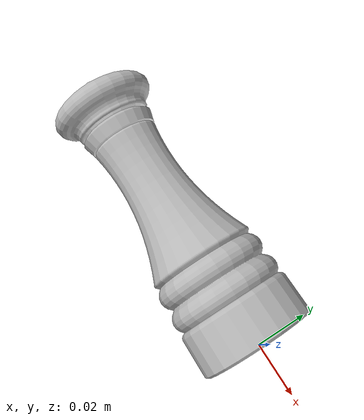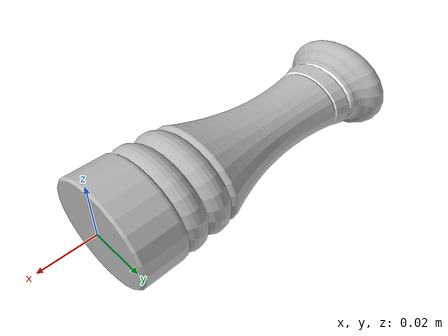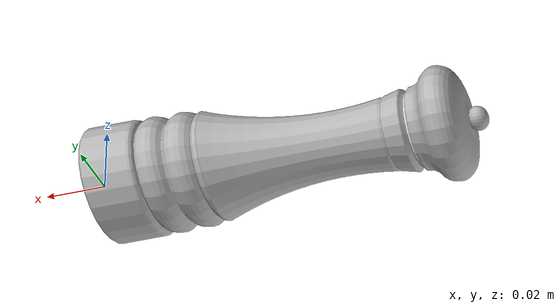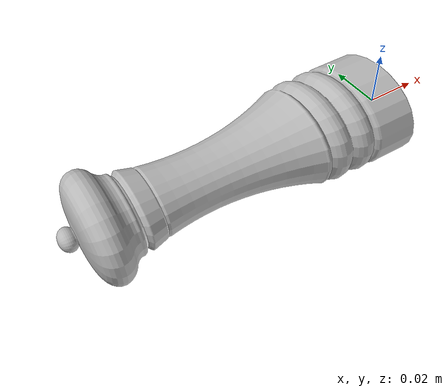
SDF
<?xml version="1.0" ?>
<sdf version="1.4">
  <model name="salt">
    <link name="salt_link">
      <inertial>
        <pose>-0.00 0.0 -0.00 0 0 0</pose>
        <mass>0.8</mass>
        <inertia>
          <ixx>0.001667</ixx>
	  <ixy>0.0</ixy>
	  <ixz>0.0</ixz>
	  <iyy>0.001667</iyy>
	  <iyz>0.0</iyz>
	  <izz>0.001667</izz>
	</inertia>
      </inertial>

      <visual name="salt_visual">
        <pose>0 0 0 0 -1.57079632679489 0 </pose>
        <material>
          <lighting>1</lighting>
          <script>
            <uri>model://salt/materials/scripts</uri>
            <uri>model://salt/materials/textures</uri>
            <name>Salt/Image</name>
          </script>
        </material>
        <geometry>
          <mesh>
            <uri>model://salt/meshes/salt.dae</uri>
            <scale>0.75 1 0.72</scale>
          </mesh>
        </geometry>
      </visual>

      <collision name="salt_collision">
        <pose>0.0 0.0 0.0 0.0 -1.57079632679489 0.0</pose>
        <geometry>
          <box>
            <size>0.035 0.06 0.10</size>
          </box>
        </geometry>
        <max_contacts>10</max_contacts>
        <surface>
          <contact>
            <ode/>
          </contact>
          <bounce/>
          <friction>
            <torsional>
              <ode/>
            </torsional>
            <ode>
              <mu>1</mu>
              <mu2>1</mu2>
            </ode>
          </friction>
        </surface>
      </collision>
      <self_collide>0</self_collide>
      <kinematic>0</kinematic>
    </link>
  </model>
</sdf>
